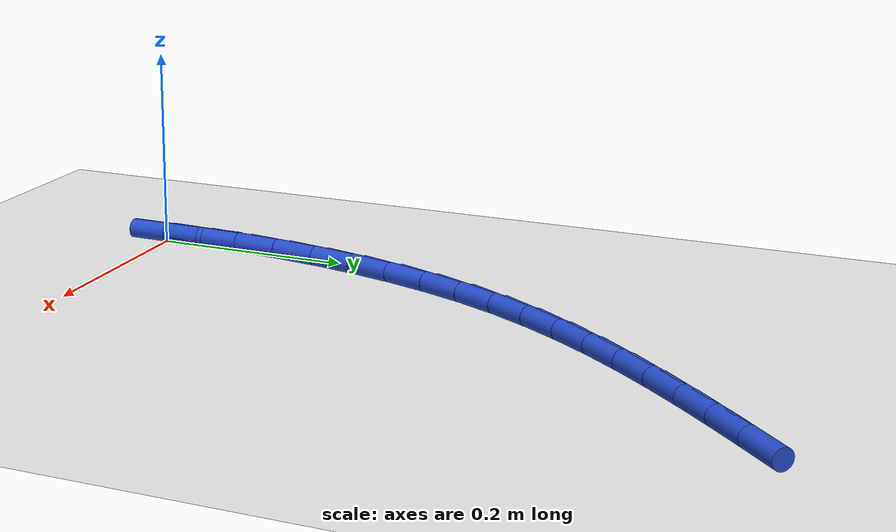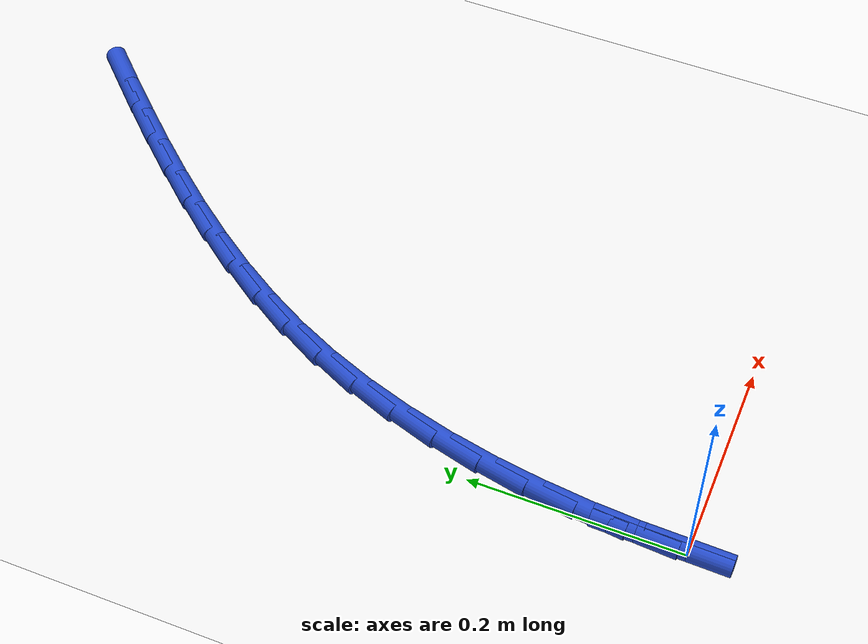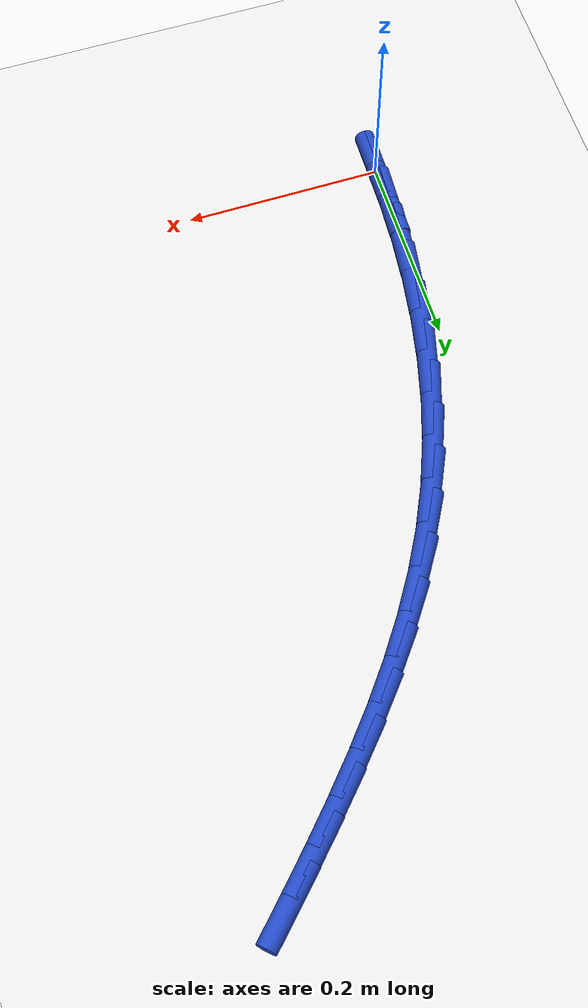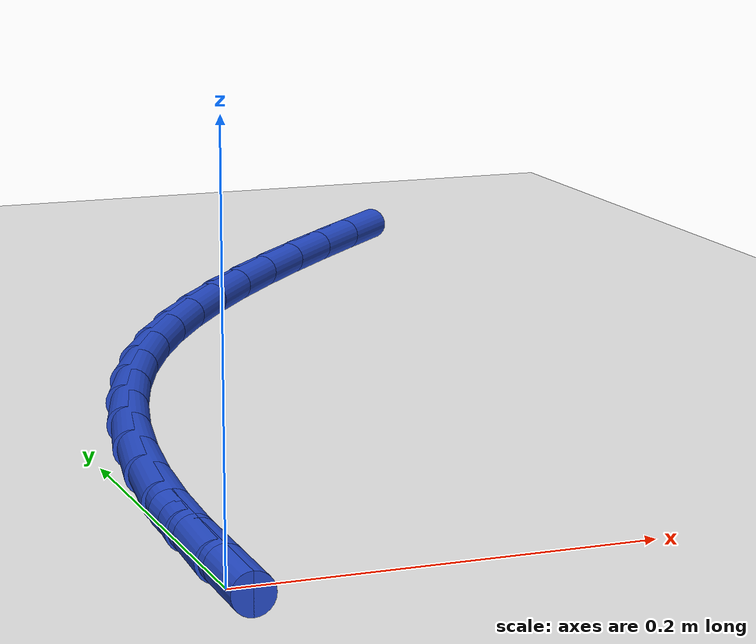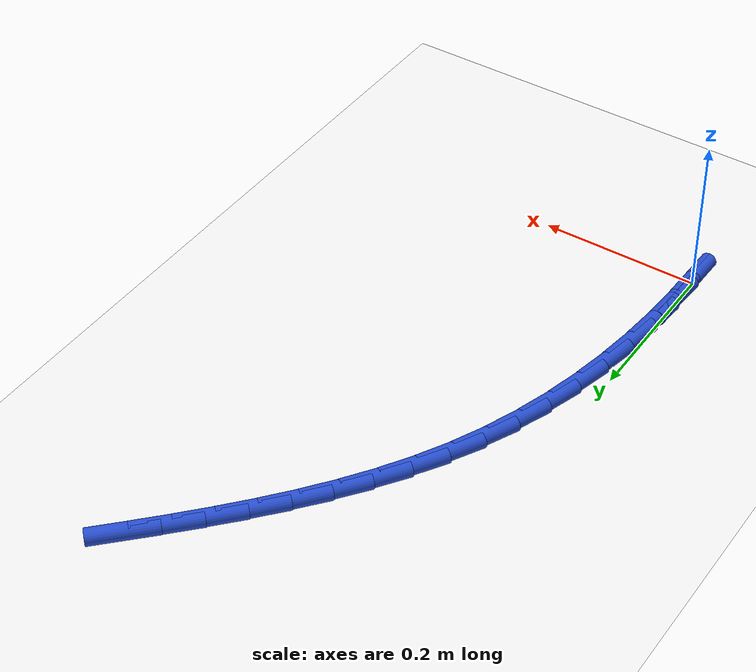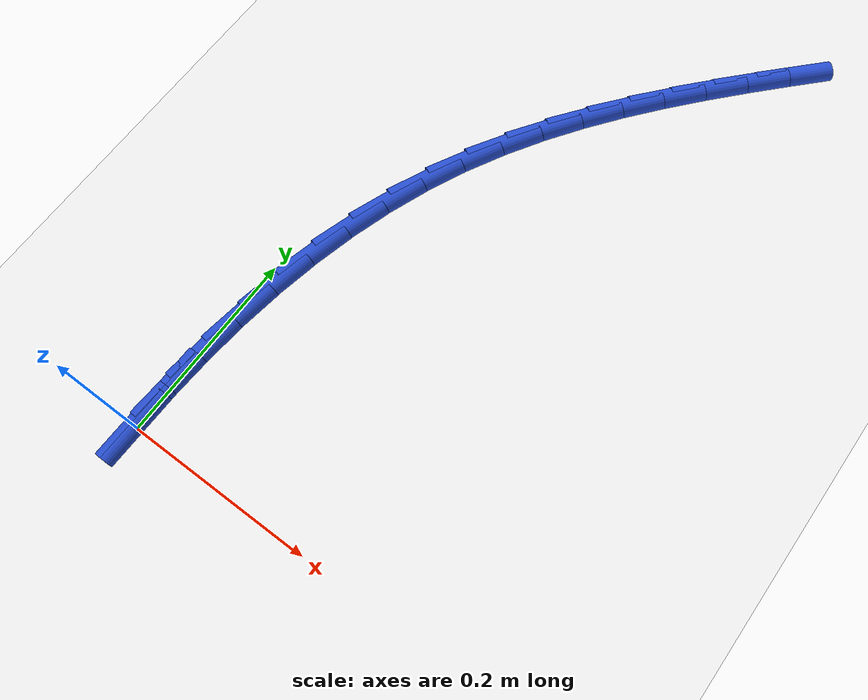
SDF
<sdf version="1.6">
 <world name="default">
  <model name="ground_plane">
   <static>1</static>
   <link name="link">
    <collision name="collision">
     <geometry><plane><normal>0 0 1</normal><size>100 100</size></plane></geometry>
     <surface><friction><ode><mu>100</mu><mu2>50</mu2></ode></friction></surface>
    </collision>
    <visual name="visual">
     <cast_shadows>0</cast_shadows>
     <geometry><plane><normal>0 0 1</normal><size>100 100</size></plane></geometry>
     <material>
      <script><uri>file://media/materials/scripts/gazebo.material</uri><name>Gazebo/WhiteGlow</name></script>
     </material>
    </visual>
   </link>
  </model>
  <model name="line">
   <link name="link_0">
    <pose>1.5612511283791264e-17 -1.3877787807814457e-17 0.01 0 1.57 1.551756170840706</pose>
    <collision name="collision">
     <geometry><cylinder><radius>0.01</radius><length>0.08</length></cylinder></geometry>
    </collision>
    <visual name="visual">
     <material>
      <script><name>Gazebo/Blue</name><uri>file://media/materials/scripts/gazebo.material</uri></script>
     </material>
     <geometry><cylinder><radius>0.01</radius><length>0.08</length></cylinder></geometry>
    </visual>
   </link>
   <link name="link_1">
    <pose>0.0008938357104792639 0.0469390952818605 0.01 0 1.57 1.5104188653667308</pose>
    <collision name="collision">
     <geometry><cylinder><radius>0.01</radius><length>0.08</length></cylinder></geometry>
    </collision>
    <visual name="visual">
     <material>
      <script><name>Gazebo/Blue</name><uri>file://media/materials/scripts/gazebo.material</uri></script>
     </material>
     <geometry><cylinder><radius>0.01</radius><length>0.08</length></cylinder></geometry>
    </visual>
   </link>
   <link name="link_2">
    <pose>0.0037242009573501445 0.09375996248951225 0.01 0 1.57 1.4667045340990486</pose>
    <collision name="collision">
     <geometry><cylinder><radius>0.01</radius><length>0.08</length></cylinder></geometry>
    </collision>
    <visual name="visual">
     <material>
      <script><name>Gazebo/Blue</name><uri>file://media/materials/scripts/gazebo.material</uri></script>
     </material>
     <geometry><cylinder><radius>0.01</radius><length>0.08</length></cylinder></geometry>
    </visual>
   </link>
   <link name="link_3">
    <pose>0.008582734307786711 0.14026673280865445 0.01 0 1.57 1.4202309264281368</pose>
    <collision name="collision">
     <geometry><cylinder><radius>0.01</radius><length>0.08</length></cylinder></geometry>
    </collision>
    <visual name="visual">
     <material>
      <script><name>Gazebo/Blue</name><uri>file://media/materials/scripts/gazebo.material</uri></script>
     </material>
     <geometry><cylinder><radius>0.01</radius><length>0.08</length></cylinder></geometry>
    </visual>
   </link>
   <link name="link_4">
    <pose>0.015561074328962986 0.18626353742498628 0.01 0 1.57 1.3706086198448177</pose>
    <collision name="collision">
     <geometry><cylinder><radius>0.01</radius><length>0.08</length></cylinder></geometry>
    </collision>
    <visual name="visual">
     <material>
      <script><name>Gazebo/Blue</name><uri>file://media/materials/scripts/gazebo.material</uri></script>
     </material>
     <geometry><cylinder><radius>0.01</radius><length>0.08</length></cylinder></geometry>
    </visual>
   </link>
   <link name="link_5">
    <pose>0.024750859588053037 0.23155450752420698 0.01 0 1.57 1.3174485915538907</pose>
    <collision name="collision">
     <geometry><cylinder><radius>0.01</radius><length>0.08</length></cylinder></geometry>
    </collision>
    <visual name="visual">
     <material>
      <script><name>Gazebo/Blue</name><uri>file://media/materials/scripts/gazebo.material</uri></script>
     </material>
     <geometry><cylinder><radius>0.01</radius><length>0.08</length></cylinder></geometry>
    </visual>
   </link>
   <link name="link_6">
    <pose>0.03624372865223091 0.2759437742920158 0.01 0 1.57 1.26037590802754</pose>
    <collision name="collision">
     <geometry><cylinder><radius>0.01</radius><length>0.08</length></cylinder></geometry>
    </collision>
    <visual name="visual">
     <material>
      <script><name>Gazebo/Blue</name><uri>file://media/materials/scripts/gazebo.material</uri></script>
     </material>
     <geometry><cylinder><radius>0.01</radius><length>0.08</length></cylinder></geometry>
    </visual>
   </link>
   <link name="link_7">
    <pose>0.05013132008867062 0.319235468914112 0.01 0 1.57 1.1990511685747829</pose>
    <collision name="collision">
     <geometry><cylinder><radius>0.01</radius><length>0.08</length></cylinder></geometry>
    </collision>
    <visual name="visual">
     <material>
      <script><name>Gazebo/Blue</name><uri>file://media/materials/scripts/gazebo.material</uri></script>
     </material>
     <geometry><cylinder><radius>0.01</radius><length>0.08</length></cylinder></geometry>
    </visual>
   </link>
   <link name="link_8">
    <pose>0.06650527246454621 0.3612337225761945 0.01 0 1.57 1.1333860222953298</pose>
    <collision name="collision">
     <geometry><cylinder><radius>0.01</radius><length>0.08</length></cylinder></geometry>
    </collision>
    <visual name="visual">
     <material>
      <script><name>Gazebo/Blue</name><uri>file://media/materials/scripts/gazebo.material</uri></script>
     </material>
     <geometry><cylinder><radius>0.01</radius><length>0.08</length></cylinder></geometry>
    </visual>
   </link>
   <link name="link_9">
    <pose>0.08545114126222171 0.4017491837660959 0.01 0 1.57 1.0681659449033898</pose>
    <collision name="collision">
     <geometry><cylinder><radius>0.01</radius><length>0.08</length></cylinder></geometry>
    </collision>
    <visual name="visual">
     <material>
      <script><name>Gazebo/Blue</name><uri>file://media/materials/scripts/gazebo.material</uri></script>
     </material>
     <geometry><cylinder><radius>0.01</radius><length>0.08</length></cylinder></geometry>
    </visual>
   </link>
   <link name="link_10">
    <pose>0.10689696867808775 0.4407612577302191 0.01 0 1.57 1.009084838422873</pose>
    <collision name="collision">
     <geometry><cylinder><radius>0.01</radius><length>0.08</length></cylinder></geometry>
    </collision>
    <visual name="visual">
     <material>
      <script><name>Gazebo/Blue</name><uri>file://media/materials/scripts/gazebo.material</uri></script>
     </material>
     <geometry><cylinder><radius>0.01</radius><length>0.08</length></cylinder></geometry>
    </visual>
   </link>
   <link name="link_11">
    <pose>0.1306028356865399 0.4784293001947909 0.01 0 1.57 0.9568897960301141</pose>
    <collision name="collision">
     <geometry><cylinder><radius>0.01</radius><length>0.08</length></cylinder></geometry>
    </collision>
    <visual name="visual">
     <material>
      <script><name>Gazebo/Blue</name><uri>file://media/materials/scripts/gazebo.material</uri></script>
     </material>
     <geometry><cylinder><radius>0.01</radius><length>0.08</length></cylinder></geometry>
    </visual>
   </link>
   <link name="link_12">
    <pose>0.1563206478877656 0.5149214258275006 0.01 0 1.57 0.9118153678936415</pose>
    <collision name="collision">
     <geometry><cylinder><radius>0.01</radius><length>0.08</length></cylinder></geometry>
    </collision>
    <visual name="visual">
     <material>
      <script><name>Gazebo/Blue</name><uri>file://media/materials/scripts/gazebo.material</uri></script>
     </material>
     <geometry><cylinder><radius>0.01</radius><length>0.08</length></cylinder></geometry>
    </visual>
   </link>
   <link name="link_13">
    <pose>0.18380231088195215 0.5504057492960381 0.01 0 1.57 0.8739004066070336</pose>
    <collision name="collision">
     <geometry><cylinder><radius>0.01</radius><length>0.08</length></cylinder></geometry>
    </collision>
    <visual name="visual">
     <material>
      <script><name>Gazebo/Blue</name><uri>file://media/materials/scripts/gazebo.material</uri></script>
     </material>
     <geometry><cylinder><radius>0.01</radius><length>0.08</length></cylinder></geometry>
    </visual>
   </link>
   <link name="link_14">
    <pose>0.21279973026928706 0.5850503852680927 0.01 0 1.57 0.8430566126141176</pose>
    <collision name="collision">
     <geometry><cylinder><radius>0.01</radius><length>0.08</length></cylinder></geometry>
    </collision>
    <visual name="visual">
     <material>
      <script><name>Gazebo/Blue</name><uri>file://media/materials/scripts/gazebo.material</uri></script>
     </material>
     <geometry><cylinder><radius>0.01</radius><length>0.08</length></cylinder></geometry>
    </visual>
   </link>
   <link name="link_15">
    <pose>0.24306481164995766 0.619023448411354 0.01 0 1.57 0.8191276440051314</pose>
    <collision name="collision">
     <geometry><cylinder><radius>0.01</radius><length>0.08</length></cylinder></geometry>
    </collision>
    <visual name="visual">
     <material>
      <script><name>Gazebo/Blue</name><uri>file://media/materials/scripts/gazebo.material</uri></script>
     </material>
     <geometry><cylinder><radius>0.01</radius><length>0.08</length></cylinder></geometry>
    </visual>
   </link>
   <link name="link_16">
    <pose>0.27434946062415155 0.6524930533935118 0.01 0 1.57 0.8019349742027959</pose>
    <collision name="collision">
     <geometry><cylinder><radius>0.01</radius><length>0.08</length></cylinder></geometry>
    </collision>
    <visual name="visual">
     <material>
      <script><name>Gazebo/Blue</name><uri>file://media/materials/scripts/gazebo.material</uri></script>
     </material>
     <geometry><cylinder><radius>0.01</radius><length>0.08</length></cylinder></geometry>
    </visual>
   </link>
   <link name="link_17">
    <pose>0.30640558279205593 0.6856273148822553 0.01 0 1.57 0.7913104087051869</pose>
    <collision name="collision">
     <geometry><cylinder><radius>0.01</radius><length>0.08</length></cylinder></geometry>
    </collision>
    <visual name="visual">
     <material>
      <script><name>Gazebo/Blue</name><uri>file://media/materials/scripts/gazebo.material</uri></script>
     </material>
     <geometry><cylinder><radius>0.01</radius><length>0.08</length></cylinder></geometry>
    </visual>
   </link>
   <link name="link_160">
    <pose>3.469446951953614e-18 2.498001805406602e-16 0.01 0 1.57 1.5523845554950269</pose>
    <collision name="collision">
     <geometry><cylinder><radius>0.01</radius><length>0.08</length></cylinder></geometry>
    </collision>
    <visual name="visual">
     <material>
      <script><name>Gazebo/Blue</name><uri>file://media/materials/scripts/gazebo.material</uri></script>
     </material>
     <geometry><cylinder><radius>0.01</radius><length>0.08</length></cylinder></geometry>
    </visual>
   </link>
   <link name="link_161">
    <pose>0.0008644972671083707 0.0469482031117681 0.01 0 1.57 1.5523845554950273</pose>
    <collision name="collision">
     <geometry><cylinder><radius>0.01</radius><length>0.08</length></cylinder></geometry>
    </collision>
    <visual name="visual">
     <material>
      <script><name>Gazebo/Blue</name><uri>file://media/materials/scripts/gazebo.material</uri></script>
     </material>
     <geometry><cylinder><radius>0.01</radius><length>0.08</length></cylinder></geometry>
    </visual>
   </link>
  </model>
 </world>
</sdf>
